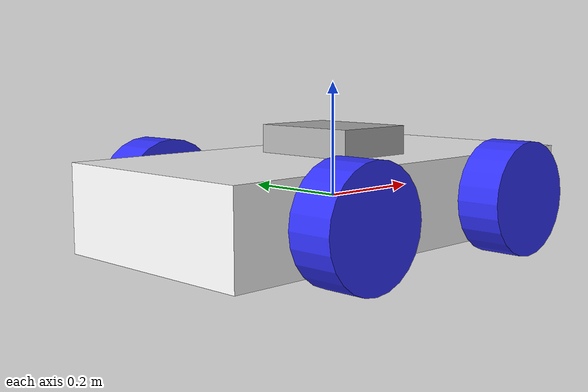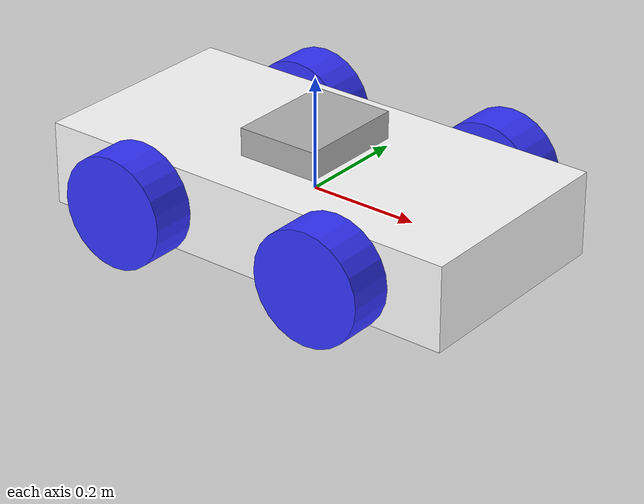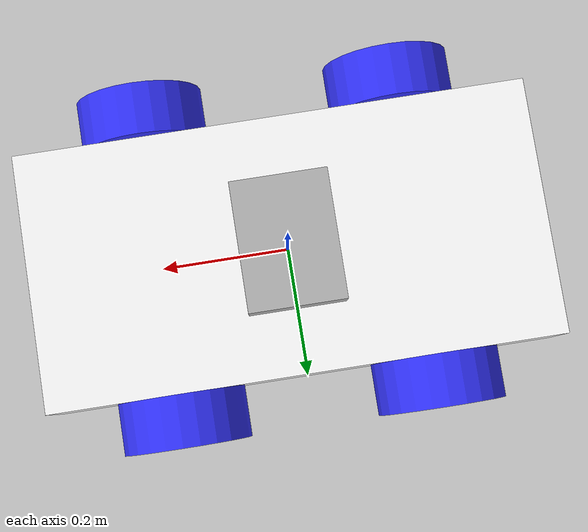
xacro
<?xml version="1.0"?>
<robot xmlns:xacro="http://www.ros.org/wiki/xacro" name="robot">

    <xacro:include filename="inertial_macros.xacro"/>

    <!-- chasis color -->

    <material name="white">
        <color rgba="1 1 1 1" />
    </material>

    <material name="red">
        <color rgba="1 0 0 1"/>
    </material>

    <material name="blue">
        <color rgba="0.2 0.2 1 1"/>
    </material>

    <material name="black">
        <color rgba="0 0 0 1"/>
    </material>

    <material name="gray">
        <color rgba="0.7 0.7 0.7 1"/>
    </material>

    <!-- BASE LINK -->

    <link name="base_link">

    </link>

    <!-- Base foot print link for slam application-->
    <joint name="base_footprint_joint" type="fixed">
        <parent link="base_link"/>
        <child link="base_footprint"/>
        <origin xyz="0 0 0"/>
    </joint>

    <link name="base_footprint">

    </link>

    <!-- CHASSIS LINK -->

    <joint name="chassis_joint" type="fixed">
        <parent link="base_link"/>
        <child link="chassis"/>
        <origin xyz="0 0 0."/>
    </joint>

    <link name="chassis">
        <visual>
            <origin xyz="0 0 0"/>
            <geometry>
                <box size="0.8 0.4 0.15"/>
            </geometry>
            <material name="white"/>
        </visual>
        <collision>
            <origin xyz="0.0 0 0.0"/>
            <geometry>
                <box size="0.8 0.4 0.15"/>
            </geometry>
        </collision>
        <xacro:inertial_box mass="0.5" x="0.8" y="0.4" z="0.15">
            <origin xyz="0.0 0 0.0" rpy="0 0 0"/>
        </xacro:inertial_box>
    </link>

    <gazebo reference="chassis">
        <material>Gazebo/White</material>
    </gazebo>

    <!-- Smaller Box -->
    <link name="smaller_box">
        <visual>
            <origin xyz="0 0 0" rpy="0 0 0"/>
            <geometry>
                <box size="0.15 0.2 0.1"/>
            </geometry>
            <material name="gray"/>
        </visual>
        <collision>
            <origin xyz="0.0 0 0.0"/>
            <geometry>
                <box size="0.1 0.2 0.1"/>
            </geometry>
        </collision>
        <xacro:inertial_box mass="0.2" x="0.1" y="0.2" z="0.1">
            <origin xyz="0.0 0 0.0" rpy="0 0 0"/>
        </xacro:inertial_box>
    </link>

    <!-- Joints -->
    <joint name="smaller_box_to_base_joint" type="fixed">
        <parent link="chassis"/>
        <child link="smaller_box"/>
        <origin xyz="0 0 0.075"/>
    </joint>

    <gazebo reference="smaller_box">
        <material>Gazebo/Gray</material>
    </gazebo>

    <!--  Front LEFT WHEEL LINK -->

    <joint name="front_left_wheel_joint" type="continuous">
        <parent link="base_link"/>
        <child link="front_left_wheel"/>
        <origin xyz="0.2 0.24 0" rpy="-1.5714 0 0" />
        <axis xyz="0 0 1"/>
    </joint>

    <link name="front_left_wheel">
        <visual>
            <geometry>
                <cylinder radius="0.1" length="0.08"/>
            </geometry>
            <material name="blue"/>
        </visual>
        <collision>
            <geometry>
                <cylinder radius="0.1" length="0.08"/>
            </geometry>
        </collision>
        <xacro:inertial_cylinder mass="0.1" length="0.08" radius="0.1">
            <origin xyz="0 0 0" rpy="0 0 0"/>
        </xacro:inertial_cylinder>
    </link>

    <gazebo reference="front_left_wheel">
        <material>Gazebo/Blue</material>
    </gazebo>

    <!-- Front_RIGHT WHEEL LINK -->
    <joint name="front_right_wheel_joint" type="continuous">
        <parent link="base_link"/>
        <child link="front_right_wheel"/>
        <origin xyz="0.2 -0.24 0" rpy="1.5714 0 0" />  <!-- pi/2 = 1.5714 -->
        <axis xyz="0 0 -1"/>
    </joint>
    <link name="front_right_wheel">
        <visual>
            <geometry>
                <cylinder radius="0.1" length="0.08"/>
            </geometry>
            <material name="blue"/>
        </visual>
        <collision>
            <geometry>
                <cylinder radius="0.1" length="0.08"/>
            </geometry>
        </collision>
        <xacro:inertial_cylinder mass="0.1" length="0.08" radius="0.1">
            <origin xyz="0 0 0" rpy="0 0 0"/>
        </xacro:inertial_cylinder>
    </link>
    <gazebo reference="front_right_wheel">
        <material>Gazebo/Blue</material>
    </gazebo>

    <!--  Rear LEFT WHEEL LINK -->
    <joint name="rear_left_wheel_joint" type="continuous">
        <parent link="base_link"/>
        <child link="rear_left_wheel"/>
        <origin xyz="-0.2 0.24 0" rpy="-1.5714 0 0" />
        <axis xyz="0 0 1"/>
    </joint>
    <link name="rear_left_wheel">
        <visual>
            <geometry>
                <cylinder radius="0.1" length="0.08"/>
            </geometry>
            <material name="blue"/>
        </visual>
        <collision>
            <geometry>
                <cylinder radius="0.1" length="0.08"/>
            </geometry>
        </collision>
        <xacro:inertial_cylinder mass="0.1" length="0.08" radius="0.1">
            <origin xyz="0 0 0" rpy="0 0 0"/>
        </xacro:inertial_cylinder>
    </link>
    <gazebo reference="rear_left_wheel">
        <material>Gazebo/Blue</material>
    </gazebo>

    <!--  Rear right WHEEL LINK -->
    <joint name="rear_right_wheel_joint" type="continuous">
        <parent link="base_link"/>
        <child link="rear_right_wheel"/>
        <origin xyz="-0.2 -0.24 0" rpy="1.5714 0 0" />
        <axis xyz="0 0 -1"/>
    </joint>
    <link name="rear_right_wheel">
        <visual>
            <geometry>
                <cylinder radius="0.1" length="0.08"/>
            </geometry>
            <material name="blue"/>
        </visual>
        <collision>
            <geometry>
                <cylinder radius="0.1" length="0.08"/>
            </geometry>
        </collision>
        <xacro:inertial_cylinder mass="0.1" length="0.08" radius="0.1">
            <origin xyz="0 0 0" rpy="0 0 0"/>
        </xacro:inertial_cylinder>
    </link>
    <gazebo reference="rear_right_wheel">
        <material>Gazebo/Blue</material>
    </gazebo>
</robot>

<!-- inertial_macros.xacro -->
<robot xmlns:xacro="http://www.ros.org/wiki/xacro" name="robot">

    <!-- Specify some standard inertial calculations https://en.wikipedia.org/wiki/List_of_moments_of_inertia -->
    <!-- These make use of xacro's mathematical functionality -->

    <xacro:macro name="inertial_sphere" params="mass radius *origin">
        <inertial>
            <xacro:insert_block name="origin"/>
            <mass value="${mass}" />
            <inertia ixx="${(2/5) * mass * (radius*radius)}" ixy="0.0" ixz="0.0"
                    iyy="${(2/5) * mass * (radius*radius)}" iyz="0.0"
                    izz="${(2/5) * mass * (radius*radius)}" />
        </inertial>
    </xacro:macro>

    <xacro:macro name="inertial_box" params="mass x y z *origin">
        <inertial>
            <xacro:insert_block name="origin"/>
            <mass value="${mass}" />
            <inertia ixx="${(1/12) * mass * (y*y+z*z)}" ixy="0.0" ixz="0.0"
                    iyy="${(1/12) * mass * (x*x+z*z)}" iyz="0.0"
                    izz="${(1/12) * mass * (x*x+y*y)}" />
        </inertial>
    </xacro:macro>

    <xacro:macro name="inertial_cylinder" params="mass length radius *origin">
        <inertial>
            <xacro:insert_block name="origin"/>
            <mass value="${mass}" />
            <inertia ixx="${(1/12) * mass * (3*radius*radius + length*length)}" ixy="0.0" ixz="0.0"
                    iyy="${(1/12) * mass * (3*radius*radius + length*length)}" iyz="0.0"
                    izz="${(1/2) * mass * (radius*radius)}" />
        </inertial>
    </xacro:macro>

</robot>
